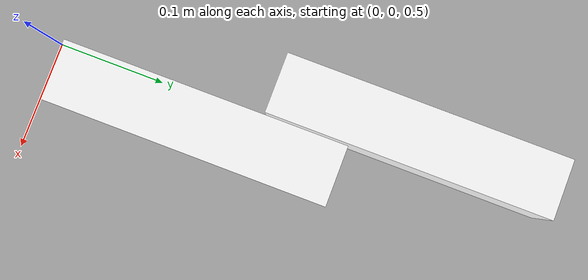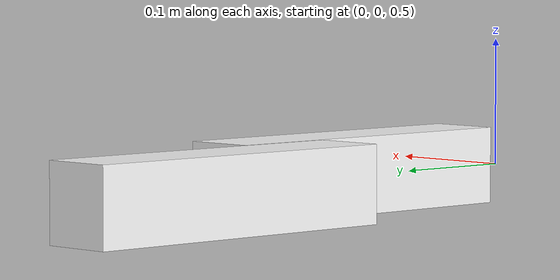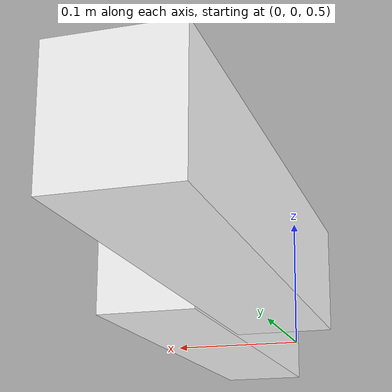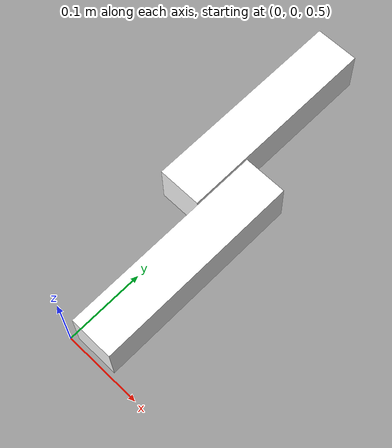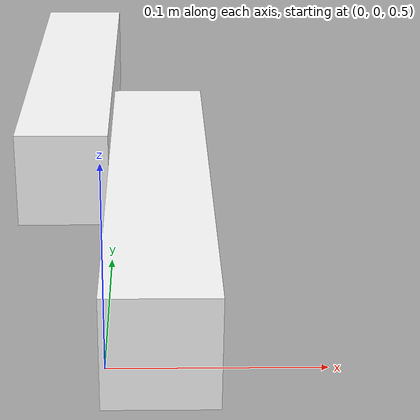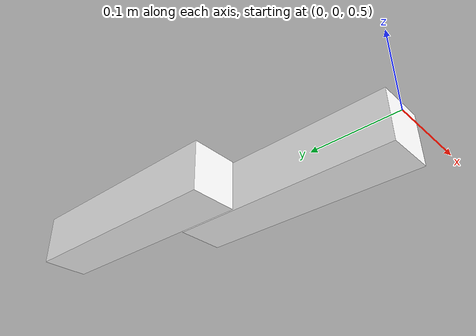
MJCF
<mujoco model="leg_constrained">
  <compiler angle="radian"/>
  <option actuatorgroupdisable="0 1 2 3 4 5">
    <flag constraint="disable" eulerdamp="disable" override="enable" energy="enable" fwdinv="enable" invdiscrete="enable" multiccd="enable" island="enable"/>
  </option>
  <worldbody>
    <geom size="0.1345 0.0285 0.03" pos="0.025 0.1445 0.5" quat="2.31079e-07 -0.707107 0.707107 2.31079e-07" type="box" rgba="1 1 1 1"/>
    <body name="LH_UPPER_LEG" pos="-0.0189999 0.24 0.5" quat="2.31079e-07 -0.707107 0.707107 2.31079e-07">
      <inertial pos="-0.0724874 0.0315826 0.00248124" quat="0.546772 0.454856 0.541001 0.448848" mass="0.476697" diaginertia="0.00306152 0.00305004 0.000215348"/>
      <joint name="LH_HFE" pos="0 0 0" axis="0 1 0" range="-3.14159 3.14159" actuatorfrcrange="-5 5"/>
      <geom size="0.1345 0.0285 0.03" pos="-0.0945 0.015 0" type="box" rgba="1 1 1 1"/>
      <body name="LH_LOWER_LEG" pos="-0.19 0.044 0">
        <inertial pos="-0.0660893 0.0198901 1.55259e-05" quat="0.487419 0.486067 0.513613 0.512215" mass="0.046942" diaginertia="0.000213 0.000211548 4.57013e-06"/>
        <joint name="LH_KFE" pos="0 0 0" axis="0 1 0" range="-3.14159 3.14159" actuatorfrcrange="-5 5"/>
      </body>
    </body>
  </worldbody>
</mujoco>
